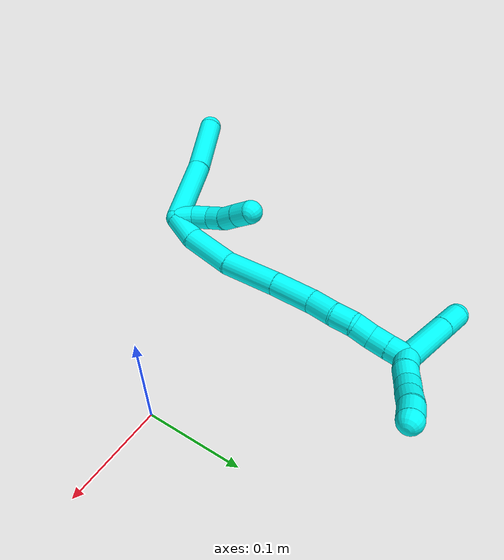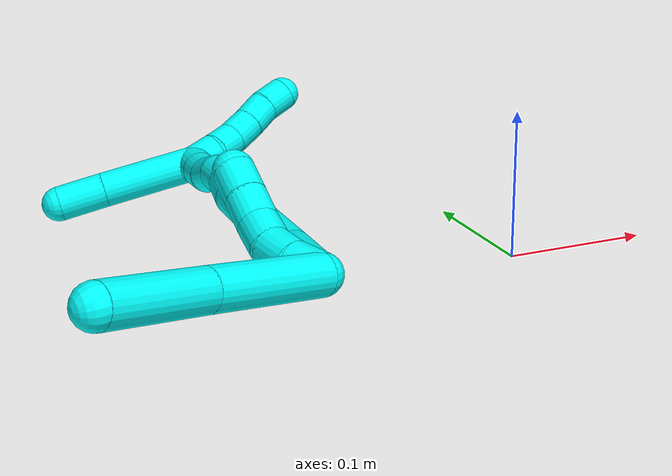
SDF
<sdf version="1.7">
 <world name="default">
  <model name="3">
   <static>0</static>
   <link name="3">
    <collision name="collision-cylinder-e_1_2_8">
     <pose>0.00942 -0.008322 0.037566 0.218007 0.240097 0.026401</pose>
     <geometry><cylinder><radius>0.0125</radius><length>0.079225</length></cylinder></geometry>
     <surface>
      <friction><ode><mu>1.16</mu><mu2>1.16</mu2><slip1>0</slip1><slip2>0</slip2></ode></friction>
      <contact><ode><kp>1e+06</kp><kd>1</kd><max_vel>0</max_vel><min_depth>0.001</min_depth></ode></contact>
     </surface>
    </collision>
    <visual name="visual-cylinder-e_1_2_8">
     <pose>0.00942 -0.008322 0.037566 0.218007 0.240097 0.026401</pose>
     <geometry><cylinder><radius>0.0125</radius><length>0.079225</length></cylinder></geometry>
     <material><ambient>0.003922 1 0.996078 1</ambient></material>
    </visual>
    <collision name="collision-cylinder-e_2_8_6">
     <pose>0.028111 -0.026963 0.107686 0.306952 0.265097 0.041245</pose>
     <geometry><cylinder><radius>0.0125</radius><length>0.070775</length></cylinder></geometry>
     <surface>
      <friction><ode><mu>1.16</mu><mu2>1.16</mu2><slip1>0</slip1><slip2>0</slip2></ode></friction>
      <contact><ode><kp>1e+06</kp><kd>1</kd><max_vel>0</max_vel><min_depth>0.001</min_depth></ode></contact>
     </surface>
    </collision>
    <visual name="visual-cylinder-e_2_8_6">
     <pose>0.028111 -0.026963 0.107686 0.306952 0.265097 0.041245</pose>
     <geometry><cylinder><radius>0.0125</radius><length>0.070775</length></cylinder></geometry>
     <material><ambient>0.003922 1 0.996078 1</ambient></material>
    </visual>
    <collision name="collision-cylinder-e_1_2_9">
     <pose>0.001353 0.009261 0.003522 -1.20743 0.135729 -0.093675</pose>
     <geometry><cylinder><radius>0.0125</radius><length>0.02</length></cylinder></geometry>
     <surface>
      <friction><ode><mu>1.16</mu><mu2>1.16</mu2><slip1>0</slip1><slip2>0</slip2></ode></friction>
      <contact><ode><kp>1e+06</kp><kd>1</kd><max_vel>0</max_vel><min_depth>0.001</min_depth></ode></contact>
     </surface>
    </collision>
    <visual name="visual-cylinder-e_1_2_9">
     <pose>0.001353 0.009261 0.003522 -1.20743 0.135729 -0.093675</pose>
     <geometry><cylinder><radius>0.0125</radius><length>0.02</length></cylinder></geometry>
     <material><ambient>0.003922 1 0.996078 1</ambient></material>
    </visual>
    <collision name="collision-cylinder-e_2_9_10">
     <pose>0.004187 0.028323 0.008365 -1.43671 0.148593 -0.129951</pose>
     <geometry><cylinder><radius>0.0125</radius><length>0.02</length></cylinder></geometry>
     <surface>
      <friction><ode><mu>1.16</mu><mu2>1.16</mu2><slip1>0</slip1><slip2>0</slip2></ode></friction>
      <contact><ode><kp>1e+06</kp><kd>1</kd><max_vel>0</max_vel><min_depth>0.001</min_depth></ode></contact>
     </surface>
    </collision>
    <visual name="visual-cylinder-e_2_9_10">
     <pose>0.004187 0.028323 0.008365 -1.43671 0.148593 -0.129951</pose>
     <geometry><cylinder><radius>0.0125</radius><length>0.02</length></cylinder></geometry>
     <material><ambient>0.003922 1 0.996078 1</ambient></material>
    </visual>
    <collision name="collision-cylinder-e_3_10_11">
     <pose>0.008788 0.047535 0.008386 -1.70824 0.317419 -0.363381</pose>
     <geometry><cylinder><radius>0.0125</radius><length>0.02</length></cylinder></geometry>
     <surface>
      <friction><ode><mu>1.16</mu><mu2>1.16</mu2><slip1>0</slip1><slip2>0</slip2></ode></friction>
      <contact><ode><kp>1e+06</kp><kd>1</kd><max_vel>0</max_vel><min_depth>0.001</min_depth></ode></contact>
     </surface>
    </collision>
    <visual name="visual-cylinder-e_3_10_11">
     <pose>0.008788 0.047535 0.008386 -1.70824 0.317419 -0.363381</pose>
     <geometry><cylinder><radius>0.0125</radius><length>0.02</length></cylinder></geometry>
     <material><ambient>0.003922 1 0.996078 1</ambient></material>
    </visual>
    <collision name="collision-cylinder-e_4_11_12">
     <pose>0.017186 0.065396 0.006216 -1.6731 0.555835 -0.612306</pose>
     <geometry><cylinder><radius>0.0125</radius><length>0.02</length></cylinder></geometry>
     <surface>
      <friction><ode><mu>1.16</mu><mu2>1.16</mu2><slip1>0</slip1><slip2>0</slip2></ode></friction>
      <contact><ode><kp>1e+06</kp><kd>1</kd><max_vel>0</max_vel><min_depth>0.001</min_depth></ode></contact>
     </surface>
    </collision>
    <visual name="visual-cylinder-e_4_11_12">
     <pose>0.017186 0.065396 0.006216 -1.6731 0.555835 -0.612306</pose>
     <geometry><cylinder><radius>0.0125</radius><length>0.02</length></cylinder></geometry>
     <material><ambient>0.003922 1 0.996078 1</ambient></material>
    </visual>
    <collision name="collision-cylinder-e_5_12_5">
     <pose>0.027574 0.082394 0.004449 -1.67565 0.536549 -0.592714</pose>
     <geometry><cylinder><radius>0.0125</radius><length>0.02</length></cylinder></geometry>
     <surface>
      <friction><ode><mu>1.16</mu><mu2>1.16</mu2><slip1>0</slip1><slip2>0</slip2></ode></friction>
      <contact><ode><kp>1e+06</kp><kd>1</kd><max_vel>0</max_vel><min_depth>0.001</min_depth></ode></contact>
     </surface>
    </collision>
    <visual name="visual-cylinder-e_5_12_5">
     <pose>0.027574 0.082394 0.004449 -1.67565 0.536549 -0.592714</pose>
     <geometry><cylinder><radius>0.0125</radius><length>0.02</length></cylinder></geometry>
     <material><ambient>0.003922 1 0.996078 1</ambient></material>
    </visual>
    <collision name="collision-cylinder-e_1_2_13">
     <pose>-0.005855 0.012735 -0.005723 -1.99312 -0.39711 0.60304</pose>
     <geometry><cylinder><radius>0.0125</radius><length>0.030279</length></cylinder></geometry>
     <surface>
      <friction><ode><mu>1.16</mu><mu2>1.16</mu2><slip1>0</slip1><slip2>0</slip2></ode></friction>
      <contact><ode><kp>1e+06</kp><kd>1</kd><max_vel>0</max_vel><min_depth>0.001</min_depth></ode></contact>
     </surface>
    </collision>
    <visual name="visual-cylinder-e_1_2_13">
     <pose>-0.005855 0.012735 -0.005723 -1.99312 -0.39711 0.60304</pose>
     <geometry><cylinder><radius>0.0125</radius><length>0.030279</length></cylinder></geometry>
     <material><ambient>0.003922 1 0.996078 1</ambient></material>
    </visual>
    <collision name="collision-cylinder-e_2_13_14">
     <pose>-0.015838 0.051273 -0.017989 -1.81916 -0.15384 0.197471</pose>
     <geometry><cylinder><radius>0.0125</radius><length>0.053875</length></cylinder></geometry>
     <surface>
      <friction><ode><mu>1.16</mu><mu2>1.16</mu2><slip1>0</slip1><slip2>0</slip2></ode></friction>
      <contact><ode><kp>1e+06</kp><kd>1</kd><max_vel>0</max_vel><min_depth>0.001</min_depth></ode></contact>
     </surface>
    </collision>
    <visual name="visual-cylinder-e_2_13_14">
     <pose>-0.015838 0.051273 -0.017989 -1.81916 -0.15384 0.197471</pose>
     <geometry><cylinder><radius>0.0125</radius><length>0.053875</length></cylinder></geometry>
     <material><ambient>0.003922 1 0.996078 1</ambient></material>
    </visual>
    <collision name="collision-cylinder-e_3_14_15">
     <pose>-0.020644 0.106917 -0.028178 -1.69236 -0.022546 0.025468</pose>
     <geometry><cylinder><radius>0.0125</radius><length>0.060142</length></cylinder></geometry>
     <surface>
      <friction><ode><mu>1.16</mu><mu2>1.16</mu2><slip1>0</slip1><slip2>0</slip2></ode></friction>
      <contact><ode><kp>1e+06</kp><kd>1</kd><max_vel>0</max_vel><min_depth>0.001</min_depth></ode></contact>
     </surface>
    </collision>
    <visual name="visual-cylinder-e_3_14_15">
     <pose>-0.020644 0.106917 -0.028178 -1.69236 -0.022546 0.025468</pose>
     <geometry><cylinder><radius>0.0125</radius><length>0.060142</length></cylinder></geometry>
     <material><ambient>0.003922 1 0.996078 1</ambient></material>
    </visual>
    <collision name="collision-cylinder-e_4_15_16">
     <pose>-0.022248 0.158873 -0.035152 -1.72019 -0.041401 0.048096</pose>
     <geometry><cylinder><radius>0.0125</radius><length>0.044765</length></cylinder></geometry>
     <surface>
      <friction><ode><mu>1.16</mu><mu2>1.16</mu2><slip1>0</slip1><slip2>0</slip2></ode></friction>
      <contact><ode><kp>1e+06</kp><kd>1</kd><max_vel>0</max_vel><min_depth>0.001</min_depth></ode></contact>
     </surface>
    </collision>
    <visual name="visual-cylinder-e_4_15_16">
     <pose>-0.022248 0.158873 -0.035152 -1.72019 -0.041401 0.048096</pose>
     <geometry><cylinder><radius>0.0125</radius><length>0.044765</length></cylinder></geometry>
     <material><ambient>0.003922 1 0.996078 1</ambient></material>
    </visual>
    <collision name="collision-cylinder-e_5_16_17">
     <pose>-0.022795 0.194483 -0.042772 -1.87864 0.026843 -0.0367</pose>
     <geometry><cylinder><radius>0.0125</radius><length>0.028335</length></cylinder></geometry>
     <surface>
      <friction><ode><mu>1.16</mu><mu2>1.16</mu2><slip1>0</slip1><slip2>0</slip2></ode></friction>
      <contact><ode><kp>1e+06</kp><kd>1</kd><max_vel>0</max_vel><min_depth>0.001</min_depth></ode></contact>
     </surface>
    </collision>
    <visual name="visual-cylinder-e_5_16_17">
     <pose>-0.022795 0.194483 -0.042772 -1.87864 0.026843 -0.0367</pose>
     <geometry><cylinder><radius>0.0125</radius><length>0.028335</length></cylinder></geometry>
     <material><ambient>0.003922 1 0.996078 1</ambient></material>
    </visual>
    <collision name="collision-cylinder-e_6_17_18">
     <pose>-0.02306 0.219011 -0.048838 -1.73031 -0.057737 0.06776</pose>
     <geometry><cylinder><radius>0.0125</radius><length>0.022383</length></cylinder></geometry>
     <surface>
      <friction><ode><mu>1.16</mu><mu2>1.16</mu2><slip1>0</slip1><slip2>0</slip2></ode></friction>
      <contact><ode><kp>1e+06</kp><kd>1</kd><max_vel>0</max_vel><min_depth>0.001</min_depth></ode></contact>
     </surface>
    </collision>
    <visual name="visual-cylinder-e_6_17_18">
     <pose>-0.02306 0.219011 -0.048838 -1.73031 -0.057737 0.06776</pose>
     <geometry><cylinder><radius>0.0125</radius><length>0.022383</length></cylinder></geometry>
     <material><ambient>0.003922 1 0.996078 1</ambient></material>
    </visual>
    <collision name="collision-cylinder-e_7_18_19">
     <pose>-0.027518 0.239308 -0.051086 -1.62191 -0.389895 0.409795</pose>
     <geometry><cylinder><radius>0.0125</radius><length>0.02006</length></cylinder></geometry>
     <surface>
      <friction><ode><mu>1.16</mu><mu2>1.16</mu2><slip1>0</slip1><slip2>0</slip2></ode></friction>
      <contact><ode><kp>1e+06</kp><kd>1</kd><max_vel>0</max_vel><min_depth>0.001</min_depth></ode></contact>
     </surface>
    </collision>
    <visual name="visual-cylinder-e_7_18_19">
     <pose>-0.027518 0.239308 -0.051086 -1.62191 -0.389895 0.409795</pose>
     <geometry><cylinder><radius>0.0125</radius><length>0.02006</length></cylinder></geometry>
     <material><ambient>0.003922 1 0.996078 1</ambient></material>
    </visual>
    <collision name="collision-cylinder-e_8_19_20">
     <pose>-0.032741 0.258346 -0.053412 -1.75802 -0.140883 0.169949</pose>
     <geometry><cylinder><radius>0.0125</radius><length>0.020092</length></cylinder></geometry>
     <surface>
      <friction><ode><mu>1.16</mu><mu2>1.16</mu2><slip1>0</slip1><slip2>0</slip2></ode></friction>
      <contact><ode><kp>1e+06</kp><kd>1</kd><max_vel>0</max_vel><min_depth>0.001</min_depth></ode></contact>
     </surface>
    </collision>
    <visual name="visual-cylinder-e_8_19_20">
     <pose>-0.032741 0.258346 -0.053412 -1.75802 -0.140883 0.169949</pose>
     <geometry><cylinder><radius>0.0125</radius><length>0.020092</length></cylinder></geometry>
     <material><ambient>0.003922 1 0.996078 1</ambient></material>
    </visual>
    <collision name="collision-cylinder-e_9_20_1">
     <pose>-0.03518 0.277916 -0.057168 -1.76285 -0.102666 0.1245</pose>
     <geometry><cylinder><radius>0.0125</radius><length>0.020068</length></cylinder></geometry>
     <surface>
      <friction><ode><mu>1.16</mu><mu2>1.16</mu2><slip1>0</slip1><slip2>0</slip2></ode></friction>
      <contact><ode><kp>1e+06</kp><kd>1</kd><max_vel>0</max_vel><min_depth>0.001</min_depth></ode></contact>
     </surface>
    </collision>
    <visual name="visual-cylinder-e_9_20_1">
     <pose>-0.03518 0.277916 -0.057168 -1.76285 -0.102666 0.1245</pose>
     <geometry><cylinder><radius>0.0125</radius><length>0.020068</length></cylinder></geometry>
     <material><ambient>0.003922 1 0.996078 1</ambient></material>
    </visual>
    <collision name="collision-cylinder-e_1_1_21">
     <pose>-0.04147 0.296095 -0.027026 -0.255819 -0.157521 0.0203</pose>
     <geometry><cylinder><radius>0.0125</radius><length>0.067081</length></cylinder></geometry>
     <surface>
      <friction><ode><mu>1.16</mu><mu2>1.16</mu2><slip1>0</slip1><slip2>0</slip2></ode></friction>
      <contact><ode><kp>1e+06</kp><kd>1</kd><max_vel>0</max_vel><min_depth>0.001</min_depth></ode></contact>
     </surface>
    </collision>
    <visual name="visual-cylinder-e_1_1_21">
     <pose>-0.04147 0.296095 -0.027026 -0.255819 -0.157521 0.0203</pose>
     <geometry><cylinder><radius>0.0125</radius><length>0.067081</length></cylinder></geometry>
     <material><ambient>0.003922 1 0.996078 1</ambient></material>
    </visual>
    <collision name="collision-cylinder-e_2_21_4">
     <pose>-0.049544 0.308499 0.020732 -0.250624 -0.171712 0.021683</pose>
     <geometry><cylinder><radius>0.0125</radius><length>0.032919</length></cylinder></geometry>
     <surface>
      <friction><ode><mu>1.16</mu><mu2>1.16</mu2><slip1>0</slip1><slip2>0</slip2></ode></friction>
      <contact><ode><kp>1e+06</kp><kd>1</kd><max_vel>0</max_vel><min_depth>0.001</min_depth></ode></contact>
     </surface>
    </collision>
    <visual name="visual-cylinder-e_2_21_4">
     <pose>-0.049544 0.308499 0.020732 -0.250624 -0.171712 0.021683</pose>
     <geometry><cylinder><radius>0.0125</radius><length>0.032919</length></cylinder></geometry>
     <material><ambient>0.003922 1 0.996078 1</ambient></material>
    </visual>
    <collision name="collision-cylinder-e_1_1_22">
     <pose>-0.033899 0.289603 -0.068617 -2.94608 0.233094 -1.74702</pose>
     <geometry><cylinder><radius>0.0125</radius><length>0.02</length></cylinder></geometry>
     <surface>
      <friction><ode><mu>1.16</mu><mu2>1.16</mu2><slip1>0</slip1><slip2>0</slip2></ode></friction>
      <contact><ode><kp>1e+06</kp><kd>1</kd><max_vel>0</max_vel><min_depth>0.001</min_depth></ode></contact>
     </surface>
    </collision>
    <visual name="visual-cylinder-e_1_1_22">
     <pose>-0.033899 0.289603 -0.068617 -2.94608 0.233094 -1.74702</pose>
     <geometry><cylinder><radius>0.0125</radius><length>0.02</length></cylinder></geometry>
     <material><ambient>0.003922 1 0.996078 1</ambient></material>
    </visual>
    <collision name="collision-cylinder-e_2_22_23">
     <pose>-0.030238 0.295363 -0.087283 -2.7404 0.135479 -0.644087</pose>
     <geometry><cylinder><radius>0.0125</radius><length>0.02</length></cylinder></geometry>
     <surface>
      <friction><ode><mu>1.16</mu><mu2>1.16</mu2><slip1>0</slip1><slip2>0</slip2></ode></friction>
      <contact><ode><kp>1e+06</kp><kd>1</kd><max_vel>0</max_vel><min_depth>0.001</min_depth></ode></contact>
     </surface>
    </collision>
    <visual name="visual-cylinder-e_2_22_23">
     <pose>-0.030238 0.295363 -0.087283 -2.7404 0.135479 -0.644087</pose>
     <geometry><cylinder><radius>0.0125</radius><length>0.02</length></cylinder></geometry>
     <material><ambient>0.003922 1 0.996078 1</ambient></material>
    </visual>
    <collision name="collision-cylinder-e_3_23_24">
     <pose>-0.025508 0.302236 -0.105324 -2.8167 0.344779 -1.63129</pose>
     <geometry><cylinder><radius>0.0125</radius><length>0.02</length></cylinder></geometry>
     <surface>
      <friction><ode><mu>1.16</mu><mu2>1.16</mu2><slip1>0</slip1><slip2>0</slip2></ode></friction>
      <contact><ode><kp>1e+06</kp><kd>1</kd><max_vel>0</max_vel><min_depth>0.001</min_depth></ode></contact>
     </surface>
    </collision>
    <visual name="visual-cylinder-e_3_23_24">
     <pose>-0.025508 0.302236 -0.105324 -2.8167 0.344779 -1.63129</pose>
     <geometry><cylinder><radius>0.0125</radius><length>0.02</length></cylinder></geometry>
     <material><ambient>0.003922 1 0.996078 1</ambient></material>
    </visual>
    <collision name="collision-cylinder-e_4_24_25">
     <pose>-0.018109 0.308516 -0.122794 -2.77582 0.413571 -1.69644</pose>
     <geometry><cylinder><radius>0.0125</radius><length>0.02</length></cylinder></geometry>
     <surface>
      <friction><ode><mu>1.16</mu><mu2>1.16</mu2><slip1>0</slip1><slip2>0</slip2></ode></friction>
      <contact><ode><kp>1e+06</kp><kd>1</kd><max_vel>0</max_vel><min_depth>0.001</min_depth></ode></contact>
     </surface>
    </collision>
    <visual name="visual-cylinder-e_4_24_25">
     <pose>-0.018109 0.308516 -0.122794 -2.77582 0.413571 -1.69644</pose>
     <geometry><cylinder><radius>0.0125</radius><length>0.02</length></cylinder></geometry>
     <material><ambient>0.003922 1 0.996078 1</ambient></material>
    </visual>
    <collision name="collision-cylinder-e_5_25_3">
     <pose>-0.011412 0.313948 -0.140735 -2.91579 0.271103 -1.75448</pose>
     <geometry><cylinder><radius>0.0125</radius><length>0.02</length></cylinder></geometry>
     <surface>
      <friction><ode><mu>1.16</mu><mu2>1.16</mu2><slip1>0</slip1><slip2>0</slip2></ode></friction>
      <contact><ode><kp>1e+06</kp><kd>1</kd><max_vel>0</max_vel><min_depth>0.001</min_depth></ode></contact>
     </surface>
    </collision>
    <visual name="visual-cylinder-e_5_25_3">
     <pose>-0.011412 0.313948 -0.140735 -2.91579 0.271103 -1.75448</pose>
     <geometry><cylinder><radius>0.0125</radius><length>0.02</length></cylinder></geometry>
     <material><ambient>0.003922 1 0.996078 1</ambient></material>
    </visual>
    <collision name="collision-sphere-3">
     <pose>-0.008734 0.316105 -0.150126 0 -0 0</pose>
     <geometry><sphere><radius>0.0125</radius></sphere></geometry>
     <surface>
      <friction><ode><mu>1.16</mu><mu2>1.16</mu2><slip1>0</slip1><slip2>0</slip2></ode></friction>
      <contact><ode><kp>1e+06</kp><kd>1</kd><max_vel>0</max_vel><min_depth>0.001</min_depth></ode></contact>
     </surface>
    </collision>
    <visual name="visual-sphere-3">
     <pose>-0.008734 0.316105 -0.150126 0 -0 0</pose>
     <geometry><sphere><radius>0.0125</radius></sphere></geometry>
     <material><ambient>0.003922 1 0.996078 1</ambient></material>
    </visual>
    <collision name="collision-sphere-25">
     <pose>-0.01409 0.311791 -0.131345 0 -0 0</pose>
     <geometry><sphere><radius>0.0125</radius></sphere></geometry>
     <surface>
      <friction><ode><mu>1.16</mu><mu2>1.16</mu2><slip1>0</slip1><slip2>0</slip2></ode></friction>
      <contact><ode><kp>1e+06</kp><kd>1</kd><max_vel>0</max_vel><min_depth>0.001</min_depth></ode></contact>
     </surface>
    </collision>
    <visual name="visual-sphere-25">
     <pose>-0.01409 0.311791 -0.131345 0 -0 0</pose>
     <geometry><sphere><radius>0.0125</radius></sphere></geometry>
     <material><ambient>0.003922 1 0.996078 1</ambient></material>
    </visual>
    <collision name="collision-sphere-24">
     <pose>-0.022128 0.305241 -0.114243 0 -0 0</pose>
     <geometry><sphere><radius>0.0125</radius></sphere></geometry>
     <surface>
      <friction><ode><mu>1.16</mu><mu2>1.16</mu2><slip1>0</slip1><slip2>0</slip2></ode></friction>
      <contact><ode><kp>1e+06</kp><kd>1</kd><max_vel>0</max_vel><min_depth>0.001</min_depth></ode></contact>
     </surface>
    </collision>
    <visual name="visual-sphere-24">
     <pose>-0.022128 0.305241 -0.114243 0 -0 0</pose>
     <geometry><sphere><radius>0.0125</radius></sphere></geometry>
     <material><ambient>0.003922 1 0.996078 1</ambient></material>
    </visual>
    <collision name="collision-sphere-23">
     <pose>-0.028888 0.299232 -0.096405 0 -0 0</pose>
     <geometry><sphere><radius>0.0125</radius></sphere></geometry>
     <surface>
      <friction><ode><mu>1.16</mu><mu2>1.16</mu2><slip1>0</slip1><slip2>0</slip2></ode></friction>
      <contact><ode><kp>1e+06</kp><kd>1</kd><max_vel>0</max_vel><min_depth>0.001</min_depth></ode></contact>
     </surface>
    </collision>
    <visual name="visual-sphere-23">
     <pose>-0.028888 0.299232 -0.096405 0 -0 0</pose>
     <geometry><sphere><radius>0.0125</radius></sphere></geometry>
     <material><ambient>0.003922 1 0.996078 1</ambient></material>
    </visual>
    <collision name="collision-sphere-22">
     <pose>-0.031589 0.291493 -0.078161 0 -0 0</pose>
     <geometry><sphere><radius>0.0125</radius></sphere></geometry>
     <surface>
      <friction><ode><mu>1.16</mu><mu2>1.16</mu2><slip1>0</slip1><slip2>0</slip2></ode></friction>
      <contact><ode><kp>1e+06</kp><kd>1</kd><max_vel>0</max_vel><min_depth>0.001</min_depth></ode></contact>
     </surface>
    </collision>
    <visual name="visual-sphere-22">
     <pose>-0.031589 0.291493 -0.078161 0 -0 0</pose>
     <geometry><sphere><radius>0.0125</radius></sphere></geometry>
     <material><ambient>0.003922 1 0.996078 1</ambient></material>
    </visual>
    <collision name="collision-sphere-4">
     <pose>-0.052356 0.312521 0.036443 0 -0 0</pose>
     <geometry><sphere><radius>0.0125</radius></sphere></geometry>
     <surface>
      <friction><ode><mu>1.16</mu><mu2>1.16</mu2><slip1>0</slip1><slip2>0</slip2></ode></friction>
      <contact><ode><kp>1e+06</kp><kd>1</kd><max_vel>0</max_vel><min_depth>0.001</min_depth></ode></contact>
     </surface>
    </collision>
    <visual name="visual-sphere-4">
     <pose>-0.052356 0.312521 0.036443 0 -0 0</pose>
     <geometry><sphere><radius>0.0125</radius></sphere></geometry>
     <material><ambient>0.003922 1 0.996078 1</ambient></material>
    </visual>
    <collision name="collision-sphere-21">
     <pose>-0.046732 0.304477 0.005021 0 -0 0</pose>
     <geometry><sphere><radius>0.0125</radius></sphere></geometry>
     <surface>
      <friction><ode><mu>1.16</mu><mu2>1.16</mu2><slip1>0</slip1><slip2>0</slip2></ode></friction>
      <contact><ode><kp>1e+06</kp><kd>1</kd><max_vel>0</max_vel><min_depth>0.001</min_depth></ode></contact>
     </surface>
    </collision>
    <visual name="visual-sphere-21">
     <pose>-0.046732 0.304477 0.005021 0 -0 0</pose>
     <geometry><sphere><radius>0.0125</radius></sphere></geometry>
     <material><ambient>0.003922 1 0.996078 1</ambient></material>
    </visual>
    <collision name="collision-sphere-1">
     <pose>-0.036209 0.287713 -0.059073 0 -0 0</pose>
     <geometry><sphere><radius>0.0125</radius></sphere></geometry>
     <surface>
      <friction><ode><mu>1.16</mu><mu2>1.16</mu2><slip1>0</slip1><slip2>0</slip2></ode></friction>
      <contact><ode><kp>1e+06</kp><kd>1</kd><max_vel>0</max_vel><min_depth>0.001</min_depth></ode></contact>
     </surface>
    </collision>
    <visual name="visual-sphere-1">
     <pose>-0.036209 0.287713 -0.059073 0 -0 0</pose>
     <geometry><sphere><radius>0.0125</radius></sphere></geometry>
     <material><ambient>0.003922 1 0.996078 1</ambient></material>
    </visual>
    <collision name="collision-sphere-11">
     <pose>0.01191 0.056946 0.007084 0 -0 0</pose>
     <geometry><sphere><radius>0.0125</radius></sphere></geometry>
     <surface>
      <friction><ode><mu>1.16</mu><mu2>1.16</mu2><slip1>0</slip1><slip2>0</slip2></ode></friction>
      <contact><ode><kp>1e+06</kp><kd>1</kd><max_vel>0</max_vel><min_depth>0.001</min_depth></ode></contact>
     </surface>
    </collision>
    <visual name="visual-sphere-11">
     <pose>0.01191 0.056946 0.007084 0 -0 0</pose>
     <geometry><sphere><radius>0.0125</radius></sphere></geometry>
     <material><ambient>0.003922 1 0.996078 1</ambient></material>
    </visual>
    <collision name="collision-sphere-10">
     <pose>0.005667 0.038124 0.009687 0 -0 0</pose>
     <geometry><sphere><radius>0.0125</radius></sphere></geometry>
     <surface>
      <friction><ode><mu>1.16</mu><mu2>1.16</mu2><slip1>0</slip1><slip2>0</slip2></ode></friction>
      <contact><ode><kp>1e+06</kp><kd>1</kd><max_vel>0</max_vel><min_depth>0.001</min_depth></ode></contact>
     </surface>
    </collision>
    <visual name="visual-sphere-10">
     <pose>0.005667 0.038124 0.009687 0 -0 0</pose>
     <geometry><sphere><radius>0.0125</radius></sphere></geometry>
     <material><ambient>0.003922 1 0.996078 1</ambient></material>
    </visual>
    <collision name="collision-sphere-6">
     <pose>0.037383 -0.037282 0.140241 0 -0 0</pose>
     <geometry><sphere><radius>0.0125</radius></sphere></geometry>
     <surface>
      <friction><ode><mu>1.16</mu><mu2>1.16</mu2><slip1>0</slip1><slip2>0</slip2></ode></friction>
      <contact><ode><kp>1e+06</kp><kd>1</kd><max_vel>0</max_vel><min_depth>0.001</min_depth></ode></contact>
     </surface>
    </collision>
    <visual name="visual-sphere-6">
     <pose>0.037383 -0.037282 0.140241 0 -0 0</pose>
     <geometry><sphere><radius>0.0125</radius></sphere></geometry>
     <material><ambient>0.003922 1 0.996078 1</ambient></material>
    </visual>
    <collision name="collision-sphere-9">
     <pose>0.002706 0.018522 0.007043 0 -0 0</pose>
     <geometry><sphere><radius>0.0125</radius></sphere></geometry>
     <surface>
      <friction><ode><mu>1.16</mu><mu2>1.16</mu2><slip1>0</slip1><slip2>0</slip2></ode></friction>
      <contact><ode><kp>1e+06</kp><kd>1</kd><max_vel>0</max_vel><min_depth>0.001</min_depth></ode></contact>
     </surface>
    </collision>
    <visual name="visual-sphere-9">
     <pose>0.002706 0.018522 0.007043 0 -0 0</pose>
     <geometry><sphere><radius>0.0125</radius></sphere></geometry>
     <material><ambient>0.003922 1 0.996078 1</ambient></material>
    </visual>
    <collision name="collision-sphere-2">
     <geometry><sphere><radius>0.0125</radius></sphere></geometry>
     <surface>
      <friction><ode><mu>1.16</mu><mu2>1.16</mu2><slip1>0</slip1><slip2>0</slip2></ode></friction>
      <contact><ode><kp>1e+06</kp><kd>1</kd><max_vel>0</max_vel><min_depth>0.001</min_depth></ode></contact>
     </surface>
    </collision>
    <visual name="visual-sphere-2">
     <geometry><sphere><radius>0.0125</radius></sphere></geometry>
     <material><ambient>0.003922 1 0.996078 1</ambient></material>
    </visual>
    <collision name="collision-sphere-19">
     <pose>-0.031331 0.248573 -0.05156 0 -0 0</pose>
     <geometry><sphere><radius>0.0125</radius></sphere></geometry>
     <surface>
      <friction><ode><mu>1.16</mu><mu2>1.16</mu2><slip1>0</slip1><slip2>0</slip2></ode></friction>
      <contact><ode><kp>1e+06</kp><kd>1</kd><max_vel>0</max_vel><min_depth>0.001</min_depth></ode></contact>
     </surface>
    </collision>
    <visual name="visual-sphere-19">
     <pose>-0.031331 0.248573 -0.05156 0 -0 0</pose>
     <geometry><sphere><radius>0.0125</radius></sphere></geometry>
     <material><ambient>0.003922 1 0.996078 1</ambient></material>
    </visual>
    <collision name="collision-sphere-8">
     <pose>0.018839 -0.016644 0.075131 0 -0 0</pose>
     <geometry><sphere><radius>0.0125</radius></sphere></geometry>
     <surface>
      <friction><ode><mu>1.16</mu><mu2>1.16</mu2><slip1>0</slip1><slip2>0</slip2></ode></friction>
      <contact><ode><kp>1e+06</kp><kd>1</kd><max_vel>0</max_vel><min_depth>0.001</min_depth></ode></contact>
     </surface>
    </collision>
    <visual name="visual-sphere-8">
     <pose>0.018839 -0.016644 0.075131 0 -0 0</pose>
     <geometry><sphere><radius>0.0125</radius></sphere></geometry>
     <material><ambient>0.003922 1 0.996078 1</ambient></material>
    </visual>
    <collision name="collision-sphere-12">
     <pose>0.022463 0.073846 0.005349 0 -0 0</pose>
     <geometry><sphere><radius>0.0125</radius></sphere></geometry>
     <surface>
      <friction><ode><mu>1.16</mu><mu2>1.16</mu2><slip1>0</slip1><slip2>0</slip2></ode></friction>
      <contact><ode><kp>1e+06</kp><kd>1</kd><max_vel>0</max_vel><min_depth>0.001</min_depth></ode></contact>
     </surface>
    </collision>
    <visual name="visual-sphere-12">
     <pose>0.022463 0.073846 0.005349 0 -0 0</pose>
     <geometry><sphere><radius>0.0125</radius></sphere></geometry>
     <material><ambient>0.003922 1 0.996078 1</ambient></material>
    </visual>
    <collision name="collision-sphere-5">
     <pose>0.032686 0.090942 0.00355 0 -0 0</pose>
     <geometry><sphere><radius>0.0125</radius></sphere></geometry>
     <surface>
      <friction><ode><mu>1.16</mu><mu2>1.16</mu2><slip1>0</slip1><slip2>0</slip2></ode></friction>
      <contact><ode><kp>1e+06</kp><kd>1</kd><max_vel>0</max_vel><min_depth>0.001</min_depth></ode></contact>
     </surface>
    </collision>
    <visual name="visual-sphere-5">
     <pose>0.032686 0.090942 0.00355 0 -0 0</pose>
     <geometry><sphere><radius>0.0125</radius></sphere></geometry>
     <material><ambient>0.003922 1 0.996078 1</ambient></material>
    </visual>
    <collision name="collision-sphere-13">
     <pose>-0.011711 0.02547 -0.011445 0 -0 0</pose>
     <geometry><sphere><radius>0.0125</radius></sphere></geometry>
     <surface>
      <friction><ode><mu>1.16</mu><mu2>1.16</mu2><slip1>0</slip1><slip2>0</slip2></ode></friction>
      <contact><ode><kp>1e+06</kp><kd>1</kd><max_vel>0</max_vel><min_depth>0.001</min_depth></ode></contact>
     </surface>
    </collision>
    <visual name="visual-sphere-13">
     <pose>-0.011711 0.02547 -0.011445 0 -0 0</pose>
     <geometry><sphere><radius>0.0125</radius></sphere></geometry>
     <material><ambient>0.003922 1 0.996078 1</ambient></material>
    </visual>
    <collision name="collision-sphere-14">
     <pose>-0.019966 0.077075 -0.024533 0 -0 0</pose>
     <geometry><sphere><radius>0.0125</radius></sphere></geometry>
     <surface>
      <friction><ode><mu>1.16</mu><mu2>1.16</mu2><slip1>0</slip1><slip2>0</slip2></ode></friction>
      <contact><ode><kp>1e+06</kp><kd>1</kd><max_vel>0</max_vel><min_depth>0.001</min_depth></ode></contact>
     </surface>
    </collision>
    <visual name="visual-sphere-14">
     <pose>-0.019966 0.077075 -0.024533 0 -0 0</pose>
     <geometry><sphere><radius>0.0125</radius></sphere></geometry>
     <material><ambient>0.003922 1 0.996078 1</ambient></material>
    </visual>
    <collision name="collision-sphere-15">
     <pose>-0.021322 0.136758 -0.031824 0 -0 0</pose>
     <geometry><sphere><radius>0.0125</radius></sphere></geometry>
     <surface>
      <friction><ode><mu>1.16</mu><mu2>1.16</mu2><slip1>0</slip1><slip2>0</slip2></ode></friction>
      <contact><ode><kp>1e+06</kp><kd>1</kd><max_vel>0</max_vel><min_depth>0.001</min_depth></ode></contact>
     </surface>
    </collision>
    <visual name="visual-sphere-15">
     <pose>-0.021322 0.136758 -0.031824 0 -0 0</pose>
     <geometry><sphere><radius>0.0125</radius></sphere></geometry>
     <material><ambient>0.003922 1 0.996078 1</ambient></material>
    </visual>
    <collision name="collision-sphere-16">
     <pose>-0.023175 0.180987 -0.038481 0 -0 0</pose>
     <geometry><sphere><radius>0.0125</radius></sphere></geometry>
     <surface>
      <friction><ode><mu>1.16</mu><mu2>1.16</mu2><slip1>0</slip1><slip2>0</slip2></ode></friction>
      <contact><ode><kp>1e+06</kp><kd>1</kd><max_vel>0</max_vel><min_depth>0.001</min_depth></ode></contact>
     </surface>
    </collision>
    <visual name="visual-sphere-16">
     <pose>-0.023175 0.180987 -0.038481 0 -0 0</pose>
     <geometry><sphere><radius>0.0125</radius></sphere></geometry>
     <material><ambient>0.003922 1 0.996078 1</ambient></material>
    </visual>
    <collision name="collision-sphere-17">
     <pose>-0.022414 0.20798 -0.047063 0 -0 0</pose>
     <geometry><sphere><radius>0.0125</radius></sphere></geometry>
     <surface>
      <friction><ode><mu>1.16</mu><mu2>1.16</mu2><slip1>0</slip1><slip2>0</slip2></ode></friction>
      <contact><ode><kp>1e+06</kp><kd>1</kd><max_vel>0</max_vel><min_depth>0.001</min_depth></ode></contact>
     </surface>
    </collision>
    <visual name="visual-sphere-17">
     <pose>-0.022414 0.20798 -0.047063 0 -0 0</pose>
     <geometry><sphere><radius>0.0125</radius></sphere></geometry>
     <material><ambient>0.003922 1 0.996078 1</ambient></material>
    </visual>
    <collision name="collision-sphere-18">
     <pose>-0.023706 0.230042 -0.050612 0 -0 0</pose>
     <geometry><sphere><radius>0.0125</radius></sphere></geometry>
     <surface>
      <friction><ode><mu>1.16</mu><mu2>1.16</mu2><slip1>0</slip1><slip2>0</slip2></ode></friction>
      <contact><ode><kp>1e+06</kp><kd>1</kd><max_vel>0</max_vel><min_depth>0.001</min_depth></ode></contact>
     </surface>
    </collision>
    <visual name="visual-sphere-18">
     <pose>-0.023706 0.230042 -0.050612 0 -0 0</pose>
     <geometry><sphere><radius>0.0125</radius></sphere></geometry>
     <material><ambient>0.003922 1 0.996078 1</ambient></material>
    </visual>
    <collision name="collision-sphere-20">
     <pose>-0.034152 0.268118 -0.055263 0 -0 0</pose>
     <geometry><sphere><radius>0.0125</radius></sphere></geometry>
     <surface>
      <friction><ode><mu>1.16</mu><mu2>1.16</mu2><slip1>0</slip1><slip2>0</slip2></ode></friction>
      <contact><ode><kp>1e+06</kp><kd>1</kd><max_vel>0</max_vel><min_depth>0.001</min_depth></ode></contact>
     </surface>
    </collision>
    <visual name="visual-sphere-20">
     <pose>-0.034152 0.268118 -0.055263 0 -0 0</pose>
     <geometry><sphere><radius>0.0125</radius></sphere></geometry>
     <material><ambient>0.003922 1 0.996078 1</ambient></material>
    </visual>
    <inertial>
     <pose>-0.012299 0.139964 -0.013827 0 -0 0</pose>
     <mass>0.75</mass>
     <inertia>
      <ixx>0.000173</ixx>
      <ixy>0</ixy>
      <ixz>0</ixz>
      <iyy>0.00013</iyy>
      <iyz>0</iyz>
      <izz>-5.9e-05</izz>
     </inertia>
    </inertial>
   </link>
   <pose>-0.186284 -0.114888 0.058164 2.71751 -1.49666 -2.58512</pose>
  </model>
 </world>
</sdf>
